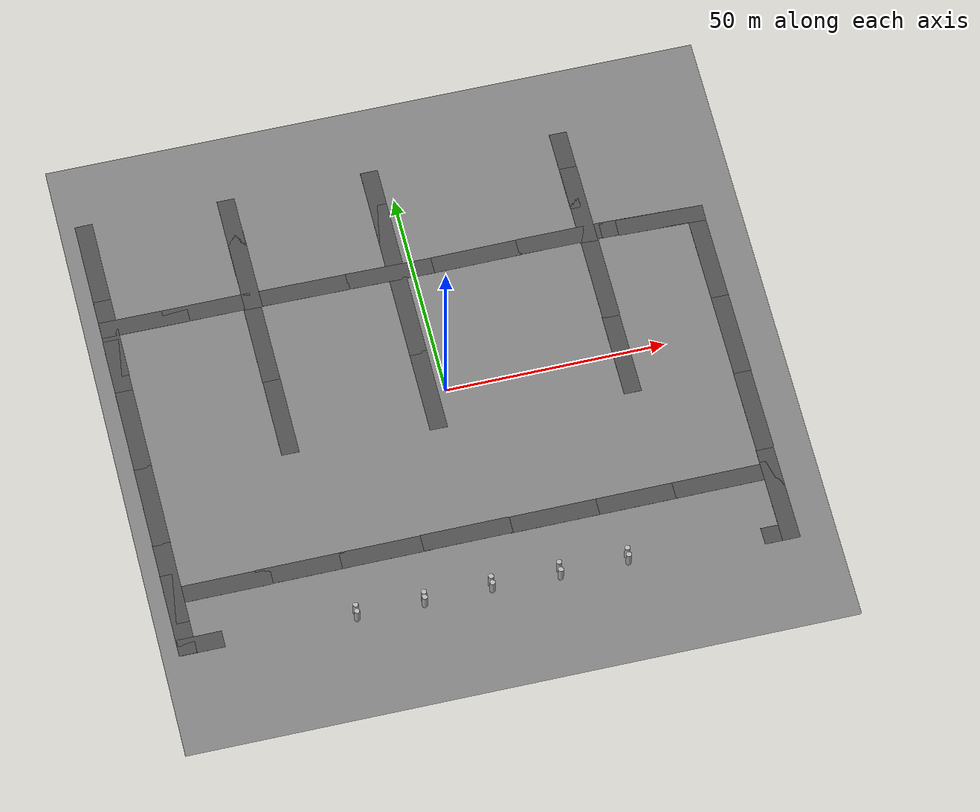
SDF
<sdf version="1.10">
 <world name="default">
  <physics type="ode">
   <max_step_size>0.0040000000000000001</max_step_size>
   <real_time_factor>1</real_time_factor>
   <real_time_update_rate>250</real_time_update_rate>
  </physics>
  <plugin name="gz::sim::systems::Physics" filename="gz-sim-physics-system"/>
  <plugin name="gz::sim::systems::SceneBroadcaster" filename="gz-sim-scene-broadcaster-system"/>
  <plugin name="gz::sim::systems::UserCommands" filename="gz-sim-user-commands-system"/>
  <plugin name="gz::sim::systems::Contact" filename="gz-sim-contact-system"/>
  <plugin name="gz::sim::systems::Imu" filename="gz-sim-imu-system"/>
  <plugin name="gz::sim::systems::AirPressure" filename="gz-sim-air-pressure-system"/>
  <plugin name="gz::sim::systems::ApplyLinkWrench" filename="gz-sim-apply-link-wrench-system"/>
  <plugin name="gz::sim::systems::NavSat" filename="gz-sim-navsat-system"/>
  <plugin name="gz::sim::systems::Sensors" filename="gz-sim-sensors-system">
   <render_engine>ogre2</render_engine>
  </plugin>
  <gravity>0 0 -9.8065999999999995</gravity>
  <magnetic_field>6.0000000000000002e-06 2.3e-05 -4.1999999999999998e-05</magnetic_field>
  <atmosphere type="adiabatic"/>
  <scene>
   <grid>false</grid>
   <ambient>0.400000006 0.400000006 0.400000006 1</ambient>
   <background>0.699999988 0.699999988 0.699999988 1</background>
   <shadows>true</shadows>
  </scene>
  <spherical_coordinates>
   <surface_model>EARTH_WGS84</surface_model>
   <world_frame_orientation>ENU</world_frame_orientation>
   <latitude_deg>50.293615072404997</latitude_deg>
   <longitude_deg>18.674141300161885</longitude_deg>
   <elevation>0</elevation>
   <heading_deg>0</heading_deg>
   <elevation>0</elevation>
  </spherical_coordinates>
  <model name="mine">
   <pose>0 0 0.12295199930667877 0 0 -0.0028702376941504839</pose>
   <static>true</static>
   <link name="link">
    <collision name="collision">
     <geometry>
      <mesh>
       <uri>file:///home/karol/ws/src/dron_sim/sim_bringup/models/mine/model://mine/meshes/mine.dae</uri>
      </mesh>
     </geometry>
    </collision>
    <visual name="visual">
     <geometry>
      <mesh>
       <uri>file:///home/karol/ws/src/dron_sim/sim_bringup/models/mine/model://mine/meshes/mine.dae</uri>
      </mesh>
     </geometry>
    </visual>
    <inertial>
     <mass>1</mass>
     <inertia><ixx>1</ixx><ixy>0</ixy><ixz>0</ixz><iyy>1</iyy><iyz>0</iyz><izz>1</izz></inertia>
    </inertial>
   </link>
  </model>
  <model name="asphalt_plane_0">
   <static>true</static>
   <link name="link">
    <collision name="collision"><geometry><box><size>20 4 0.10000000000000001</size></box></geometry></collision>
    <visual name="visual">
     <cast_shadows>false</cast_shadows>
     <geometry><box><size>20 4 0.10000000000000001</size></box></geometry>
     <material>
      <script>
       <uri>https://fuel.gazebosim.org/1.0/openrobotics/models/asphalt plane/3/files/materials/scripts</uri>
       <uri>https://fuel.gazebosim.org/1.0/openrobotics/models/asphalt plane/3/files/materials/textures</uri>
       <name>vrc/asphalt</name>
      </script>
     </material>
    </visual>
    <inertial>
     <mass>1</mass>
     <inertia><ixx>1</ixx><ixy>0</ixy><ixz>0</ixz><iyy>1</iyy><iyz>0</iyz><izz>1</izz></inertia>
    </inertial>
   </link>
   <pose>-61.217483520507812 32.286003112792969 0.10000000000000001 0 0 -0.0062067301766573144</pose>
  </model>
  <model name="asphalt_plane_1">
   <static>true</static>
   <link name="link">
    <collision name="collision"><geometry><box><size>20 4 0.10000000000000001</size></box></geometry></collision>
    <visual name="visual">
     <cast_shadows>false</cast_shadows>
     <geometry><box><size>20 4 0.10000000000000001</size></box></geometry>
     <material>
      <script>
       <uri>https://fuel.gazebosim.org/1.0/openrobotics/models/asphalt plane/3/files/materials/scripts</uri>
       <uri>https://fuel.gazebosim.org/1.0/openrobotics/models/asphalt plane/3/files/materials/textures</uri>
       <name>vrc/asphalt</name>
      </script>
     </material>
    </visual>
    <inertial>
     <mass>1</mass>
     <inertia><ixx>1</ixx><ixy>0</ixy><ixz>0</ixz><iyy>1</iyy><iyz>0</iyz><izz>1</izz></inertia>
    </inertial>
   </link>
   <pose>-24.775899887084961 32.055500030517578 0.10000000000000001 0 0 -0.01061559961811568</pose>
  </model>
  <model name="asphalt_plane_2">
   <static>true</static>
   <link name="link">
    <collision name="collision"><geometry><box><size>20 4 0.10000000000000001</size></box></geometry></collision>
    <visual name="visual">
     <cast_shadows>false</cast_shadows>
     <geometry><box><size>20 4 0.10000000000000001</size></box></geometry>
     <material>
      <script>
       <uri>https://fuel.gazebosim.org/1.0/openrobotics/models/asphalt plane/3/files/materials/scripts</uri>
       <uri>https://fuel.gazebosim.org/1.0/openrobotics/models/asphalt plane/3/files/materials/textures</uri>
       <name>vrc/asphalt</name>
      </script>
     </material>
    </visual>
    <inertial>
     <mass>1</mass>
     <inertia><ixx>1</ixx><ixy>0</ixy><ixz>0</ixz><iyy>1</iyy><iyz>0</iyz><izz>1</izz></inertia>
    </inertial>
   </link>
   <pose>-5.0120377540588379 31.818853378295898 0.10000000000000001 0 0 -0.015387500146380972</pose>
  </model>
  <model name="asphalt_plane_3">
   <static>true</static>
   <link name="link">
    <collision name="collision"><geometry><box><size>20 4 0.10000000000000001</size></box></geometry></collision>
    <visual name="visual">
     <cast_shadows>false</cast_shadows>
     <geometry><box><size>20 4 0.10000000000000001</size></box></geometry>
     <material>
      <script>
       <uri>https://fuel.gazebosim.org/1.0/openrobotics/models/asphalt plane/3/files/materials/scripts</uri>
       <uri>https://fuel.gazebosim.org/1.0/openrobotics/models/asphalt plane/3/files/materials/textures</uri>
       <name>vrc/asphalt</name>
      </script>
     </material>
    </visual>
    <inertial>
     <mass>1</mass>
     <inertia><ixx>1</ixx><ixy>0</ixy><ixz>0</ixz><iyy>1</iyy><iyz>0</iyz><izz>1</izz></inertia>
    </inertial>
   </link>
   <pose>14.530110359191895 31.741804122924805 0.10000000000000001 0 0 0.0044157601731133434</pose>
  </model>
  <model name="asphalt_plane_4">
   <static>true</static>
   <link name="link">
    <collision name="collision"><geometry><box><size>20 4 0.10000000000000001</size></box></geometry></collision>
    <visual name="visual">
     <cast_shadows>false</cast_shadows>
     <geometry><box><size>20 4 0.10000000000000001</size></box></geometry>
     <material>
      <script>
       <uri>https://fuel.gazebosim.org/1.0/openrobotics/models/asphalt plane/3/files/materials/scripts</uri>
       <uri>https://fuel.gazebosim.org/1.0/openrobotics/models/asphalt plane/3/files/materials/textures</uri>
       <name>vrc/asphalt</name>
      </script>
     </material>
    </visual>
    <inertial>
     <mass>1</mass>
     <inertia><ixx>1</ixx><ixy>0</ixy><ixz>0</ixz><iyy>1</iyy><iyz>0</iyz><izz>1</izz></inertia>
    </inertial>
   </link>
   <pose>34.047901153564453 31.812299728393555 0.10000000000000001 0 0 -0.0038311104937279248</pose>
  </model>
  <model name="asphalt_plane_5">
   <static>true</static>
   <link name="link">
    <collision name="collision"><geometry><box><size>20 4 0.10000000000000001</size></box></geometry></collision>
    <visual name="visual">
     <cast_shadows>false</cast_shadows>
     <geometry><box><size>20 4 0.10000000000000001</size></box></geometry>
     <material>
      <script>
       <uri>https://fuel.gazebosim.org/1.0/openrobotics/models/asphalt plane/3/files/materials/scripts</uri>
       <uri>https://fuel.gazebosim.org/1.0/openrobotics/models/asphalt plane/3/files/materials/textures</uri>
       <name>vrc/asphalt</name>
      </script>
     </material>
    </visual>
    <inertial>
     <mass>1</mass>
     <inertia><ixx>1</ixx><ixy>0</ixy><ixz>0</ixz><iyy>1</iyy><iyz>0</iyz><izz>1</izz></inertia>
    </inertial>
   </link>
   <pose>53.204425811767578 31.432657241821289 0.10000000000000001 0 0 -0.035102299478958564</pose>
  </model>
  <model name="asphalt_plane_6">
   <static>true</static>
   <link name="link">
    <collision name="collision"><geometry><box><size>20 4 0.10000000000000001</size></box></geometry></collision>
    <visual name="visual">
     <cast_shadows>false</cast_shadows>
     <geometry><box><size>20 4 0.10000000000000001</size></box></geometry>
     <material>
      <script>
       <uri>https://fuel.gazebosim.org/1.0/openrobotics/models/asphalt plane/3/files/materials/scripts</uri>
       <uri>https://fuel.gazebosim.org/1.0/openrobotics/models/asphalt plane/3/files/materials/textures</uri>
       <name>vrc/asphalt</name>
      </script>
     </material>
    </visual>
    <inertial>
     <mass>1</mass>
     <inertia><ixx>1</ixx><ixy>0</ixy><ixz>0</ixz><iyy>1</iyy><iyz>0</iyz><izz>1</izz></inertia>
    </inertial>
   </link>
   <pose>56.973941802978516 31.258821487426758 0.10000000000000001 0 0 -0.030759699327713306</pose>
  </model>
  <model name="asphalt_plane_7">
   <static>true</static>
   <link name="link">
    <collision name="collision"><geometry><box><size>4 20 0.10000000000000001</size></box></geometry></collision>
    <visual name="visual">
     <cast_shadows>false</cast_shadows>
     <geometry><box><size>4 20 0.10000000000000001</size></box></geometry>
     <material>
      <script>
       <uri>https://fuel.gazebosim.org/1.0/openrobotics/models/asphalt plane/3/files/materials/scripts</uri>
       <uri>https://fuel.gazebosim.org/1.0/openrobotics/models/asphalt plane/3/files/materials/textures</uri>
       <name>vrc/asphalt</name>
      </script>
     </material>
    </visual>
    <inertial>
     <mass>1</mass>
     <inertia><ixx>1</ixx><ixy>0</ixy><ixz>0</ixz><iyy>1</iyy><iyz>0</iyz><izz>1</izz></inertia>
    </inertial>
   </link>
   <pose>-36.754901885986328 40.108165740966797 0.10000000000000001 0 0 0</pose>
  </model>
  <model name="asphalt_plane_8">
   <static>true</static>
   <link name="link">
    <collision name="collision"><geometry><box><size>4 20 0.10000000000000001</size></box></geometry></collision>
    <visual name="visual">
     <cast_shadows>false</cast_shadows>
     <geometry><box><size>4 20 0.10000000000000001</size></box></geometry>
     <material>
      <script>
       <uri>https://fuel.gazebosim.org/1.0/openrobotics/models/asphalt plane/3/files/materials/scripts</uri>
       <uri>https://fuel.gazebosim.org/1.0/openrobotics/models/asphalt plane/3/files/materials/textures</uri>
       <name>vrc/asphalt</name>
      </script>
     </material>
    </visual>
    <inertial>
     <mass>1</mass>
     <inertia><ixx>1</ixx><ixy>0</ixy><ixz>0</ixz><iyy>1</iyy><iyz>0</iyz><izz>1</izz></inertia>
    </inertial>
   </link>
   <pose>-36.830970764160156 48.987098693847656 0.10000000000000001 0 0 0</pose>
  </model>
  <model name="asphalt_plane_9">
   <static>true</static>
   <link name="link">
    <collision name="collision"><geometry><box><size>4 20 0.10000000000000001</size></box></geometry></collision>
    <visual name="visual">
     <cast_shadows>false</cast_shadows>
     <geometry><box><size>4 20 0.10000000000000001</size></box></geometry>
     <material>
      <script>
       <uri>https://fuel.gazebosim.org/1.0/openrobotics/models/asphalt plane/3/files/materials/scripts</uri>
       <uri>https://fuel.gazebosim.org/1.0/openrobotics/models/asphalt plane/3/files/materials/textures</uri>
       <name>vrc/asphalt</name>
      </script>
     </material>
    </visual>
    <inertial>
     <mass>1</mass>
     <inertia><ixx>1</ixx><ixy>0</ixy><ixz>0</ixz><iyy>1</iyy><iyz>0</iyz><izz>1</izz></inertia>
    </inertial>
   </link>
   <pose>-69.2471923828125 29.912099838256836 0.10000000000000001 0 0 0</pose>
  </model>
  <model name="asphalt_plane_10">
   <static>true</static>
   <link name="link">
    <collision name="collision"><geometry><box><size>4 20 0.10000000000000001</size></box></geometry></collision>
    <visual name="visual">
     <cast_shadows>false</cast_shadows>
     <geometry><box><size>4 20 0.10000000000000001</size></box></geometry>
     <material>
      <script>
       <uri>https://fuel.gazebosim.org/1.0/openrobotics/models/asphalt plane/3/files/materials/scripts</uri>
       <uri>https://fuel.gazebosim.org/1.0/openrobotics/models/asphalt plane/3/files/materials/textures</uri>
       <name>vrc/asphalt</name>
      </script>
     </material>
    </visual>
    <inertial>
     <mass>1</mass>
     <inertia><ixx>1</ixx><ixy>0</ixy><ixz>0</ixz><iyy>1</iyy><iyz>0</iyz><izz>1</izz></inertia>
    </inertial>
   </link>
   <pose>-69.254173278808594 49.835899353027344 0.10000000000000001 0 0 0</pose>
  </model>
  <model name="asphalt_plane_11">
   <static>true</static>
   <link name="link">
    <collision name="collision"><geometry><box><size>4 20 0.10000000000000001</size></box></geometry></collision>
    <visual name="visual">
     <cast_shadows>false</cast_shadows>
     <geometry><box><size>4 20 0.10000000000000001</size></box></geometry>
     <material>
      <script>
       <uri>https://fuel.gazebosim.org/1.0/openrobotics/models/asphalt plane/3/files/materials/scripts</uri>
       <uri>https://fuel.gazebosim.org/1.0/openrobotics/models/asphalt plane/3/files/materials/textures</uri>
       <name>vrc/asphalt</name>
      </script>
     </material>
    </visual>
    <inertial>
     <mass>1</mass>
     <inertia><ixx>1</ixx><ixy>0</ixy><ixz>0</ixz><iyy>1</iyy><iyz>0</iyz><izz>1</izz></inertia>
    </inertial>
   </link>
   <pose>-3.8194301128387451 39.800098419189453 0.10000000149011612 0 0 0</pose>
  </model>
  <model name="asphalt_plane_12">
   <static>true</static>
   <link name="link">
    <collision name="collision"><geometry><box><size>4 20 0.10000000000000001</size></box></geometry></collision>
    <visual name="visual">
     <cast_shadows>false</cast_shadows>
     <geometry><box><size>4 20 0.10000000000000001</size></box></geometry>
     <material>
      <script>
       <uri>https://fuel.gazebosim.org/1.0/openrobotics/models/asphalt plane/3/files/materials/scripts</uri>
       <uri>https://fuel.gazebosim.org/1.0/openrobotics/models/asphalt plane/3/files/materials/textures</uri>
       <name>vrc/asphalt</name>
      </script>
     </material>
    </visual>
    <inertial>
     <mass>1</mass>
     <inertia><ixx>1</ixx><ixy>0</ixy><ixz>0</ixz><iyy>1</iyy><iyz>0</iyz><izz>1</izz></inertia>
    </inertial>
   </link>
   <pose>-3.8157899379730225 48.787849426269531 0.10000000149011612 0 0 0</pose>
  </model>
  <model name="asphalt_plane_13">
   <static>true</static>
   <link name="link">
    <collision name="collision"><geometry><box><size>4 20 0.10000000000000001</size></box></geometry></collision>
    <visual name="visual">
     <cast_shadows>false</cast_shadows>
     <geometry><box><size>4 20 0.10000000000000001</size></box></geometry>
     <material>
      <script>
       <uri>https://fuel.gazebosim.org/1.0/openrobotics/models/asphalt plane/3/files/materials/scripts</uri>
       <uri>https://fuel.gazebosim.org/1.0/openrobotics/models/asphalt plane/3/files/materials/textures</uri>
       <name>vrc/asphalt</name>
      </script>
     </material>
    </visual>
    <inertial>
     <mass>1</mass>
     <inertia><ixx>1</ixx><ixy>0</ixy><ixz>0</ixz><iyy>1</iyy><iyz>0</iyz><izz>1</izz></inertia>
    </inertial>
   </link>
   <pose>40.065200805664062 39.448524475097656 0.10000000000000001 0 0 0</pose>
  </model>
  <model name="asphalt_plane_14">
   <static>true</static>
   <link name="link">
    <collision name="collision"><geometry><box><size>4 20 0.10000000000000001</size></box></geometry></collision>
    <visual name="visual">
     <cast_shadows>false</cast_shadows>
     <geometry><box><size>4 20 0.10000000000000001</size></box></geometry>
     <material>
      <script>
       <uri>https://fuel.gazebosim.org/1.0/openrobotics/models/asphalt plane/3/files/materials/scripts</uri>
       <uri>https://fuel.gazebosim.org/1.0/openrobotics/models/asphalt plane/3/files/materials/textures</uri>
       <name>vrc/asphalt</name>
      </script>
     </material>
    </visual>
    <inertial>
     <mass>1</mass>
     <inertia><ixx>1</ixx><ixy>0</ixy><ixz>0</ixz><iyy>1</iyy><iyz>0</iyz><izz>1</izz></inertia>
    </inertial>
   </link>
   <pose>40.003288269042969 48.785900115966797 0.10000000000000001 0 0 0</pose>
  </model>
  <model name="asphalt_plane_15">
   <static>true</static>
   <link name="link">
    <collision name="collision"><geometry><box><size>4 20 0.10000000000000001</size></box></geometry></collision>
    <visual name="visual">
     <cast_shadows>false</cast_shadows>
     <geometry><box><size>4 20 0.10000000000000001</size></box></geometry>
     <material>
      <script>
       <uri>https://fuel.gazebosim.org/1.0/openrobotics/models/asphalt plane/3/files/materials/scripts</uri>
       <uri>https://fuel.gazebosim.org/1.0/openrobotics/models/asphalt plane/3/files/materials/textures</uri>
       <name>vrc/asphalt</name>
      </script>
     </material>
    </visual>
    <inertial>
     <mass>1</mass>
     <inertia><ixx>1</ixx><ixy>0</ixy><ixz>0</ixz><iyy>1</iyy><iyz>0</iyz><izz>1</izz></inertia>
    </inertial>
   </link>
   <pose>64.909599304199219 19.035907745361328 0.10000000000000001 0 0 0</pose>
  </model>
  <model name="asphalt_plane_16">
   <static>true</static>
   <link name="link">
    <collision name="collision"><geometry><box><size>4 20 0.10000000000000001</size></box></geometry></collision>
    <visual name="visual">
     <cast_shadows>false</cast_shadows>
     <geometry><box><size>4 20 0.10000000000000001</size></box></geometry>
     <material>
      <script>
       <uri>https://fuel.gazebosim.org/1.0/openrobotics/models/asphalt plane/3/files/materials/scripts</uri>
       <uri>https://fuel.gazebosim.org/1.0/openrobotics/models/asphalt plane/3/files/materials/textures</uri>
       <name>vrc/asphalt</name>
      </script>
     </material>
    </visual>
    <inertial>
     <mass>1</mass>
     <inertia><ixx>1</ixx><ixy>0</ixy><ixz>0</ixz><iyy>1</iyy><iyz>0</iyz><izz>1</izz></inertia>
    </inertial>
   </link>
   <pose>64.915397644042969 -0.956828773021698 0.10000000000000001 0 0 0</pose>
  </model>
  <model name="asphalt_plane_17">
   <static>true</static>
   <link name="link">
    <collision name="collision"><geometry><box><size>4 20 0.10000000000000001</size></box></geometry></collision>
    <visual name="visual">
     <cast_shadows>false</cast_shadows>
     <geometry><box><size>4 20 0.10000000000000001</size></box></geometry>
     <material>
      <script>
       <uri>https://fuel.gazebosim.org/1.0/openrobotics/models/asphalt plane/3/files/materials/scripts</uri>
       <uri>https://fuel.gazebosim.org/1.0/openrobotics/models/asphalt plane/3/files/materials/textures</uri>
       <name>vrc/asphalt</name>
      </script>
     </material>
    </visual>
    <inertial>
     <mass>1</mass>
     <inertia><ixx>1</ixx><ixy>0</ixy><ixz>0</ixz><iyy>1</iyy><iyz>0</iyz><izz>1</izz></inertia>
    </inertial>
   </link>
   <pose>64.841201782226562 -20.834541320800781 0.10000000000000001 0 0 0</pose>
  </model>
  <model name="asphalt_plane_18">
   <static>true</static>
   <link name="link">
    <collision name="collision"><geometry><box><size>4 20 0.10000000000000001</size></box></geometry></collision>
    <visual name="visual">
     <cast_shadows>false</cast_shadows>
     <geometry><box><size>4 20 0.10000000000000001</size></box></geometry>
     <material>
      <script>
       <uri>https://fuel.gazebosim.org/1.0/openrobotics/models/asphalt plane/3/files/materials/scripts</uri>
       <uri>https://fuel.gazebosim.org/1.0/openrobotics/models/asphalt plane/3/files/materials/textures</uri>
       <name>vrc/asphalt</name>
      </script>
     </material>
    </visual>
    <inertial>
     <mass>1</mass>
     <inertia><ixx>1</ixx><ixy>0</ixy><ixz>0</ixz><iyy>1</iyy><iyz>0</iyz><izz>1</izz></inertia>
    </inertial>
   </link>
   <pose>64.738609313964844 -40.751701354980469 0.10000000000000001 0 0 0</pose>
  </model>
  <model name="asphalt_plane_19">
   <static>true</static>
   <link name="link">
    <collision name="collision"><geometry><box><size>4 20 0.10000000000000001</size></box></geometry></collision>
    <visual name="visual">
     <cast_shadows>false</cast_shadows>
     <geometry><box><size>4 20 0.10000000000000001</size></box></geometry>
     <material>
      <script>
       <uri>https://fuel.gazebosim.org/1.0/openrobotics/models/asphalt plane/3/files/materials/scripts</uri>
       <uri>https://fuel.gazebosim.org/1.0/openrobotics/models/asphalt plane/3/files/materials/textures</uri>
       <name>vrc/asphalt</name>
      </script>
     </material>
    </visual>
    <inertial>
     <mass>1</mass>
     <inertia><ixx>1</ixx><ixy>0</ixy><ixz>0</ixz><iyy>1</iyy><iyz>0</iyz><izz>1</izz></inertia>
    </inertial>
   </link>
   <pose>-69.308998107910156 6.0952801704406738 0.10000000000000001 0 0 0</pose>
  </model>
  <model name="asphalt_plane_20">
   <static>true</static>
   <link name="link">
    <collision name="collision"><geometry><box><size>4 20 0.10000000000000001</size></box></geometry></collision>
    <visual name="visual">
     <cast_shadows>false</cast_shadows>
     <geometry><box><size>4 20 0.10000000000000001</size></box></geometry>
     <material>
      <script>
       <uri>https://fuel.gazebosim.org/1.0/openrobotics/models/asphalt plane/3/files/materials/scripts</uri>
       <uri>https://fuel.gazebosim.org/1.0/openrobotics/models/asphalt plane/3/files/materials/textures</uri>
       <name>vrc/asphalt</name>
      </script>
     </material>
    </visual>
    <inertial>
     <mass>1</mass>
     <inertia><ixx>1</ixx><ixy>0</ixy><ixz>0</ixz><iyy>1</iyy><iyz>0</iyz><izz>1</izz></inertia>
    </inertial>
   </link>
   <pose>-69.332267761230469 -13.41919994354248 0.10000000000000001 0 0 0</pose>
  </model>
  <model name="asphalt_plane_21">
   <static>true</static>
   <link name="link">
    <collision name="collision"><geometry><box><size>4 20 0.10000000000000001</size></box></geometry></collision>
    <visual name="visual">
     <cast_shadows>false</cast_shadows>
     <geometry><box><size>4 20 0.10000000000000001</size></box></geometry>
     <material>
      <script>
       <uri>https://fuel.gazebosim.org/1.0/openrobotics/models/asphalt plane/3/files/materials/scripts</uri>
       <uri>https://fuel.gazebosim.org/1.0/openrobotics/models/asphalt plane/3/files/materials/textures</uri>
       <name>vrc/asphalt</name>
      </script>
     </material>
    </visual>
    <inertial>
     <mass>1</mass>
     <inertia><ixx>1</ixx><ixy>0</ixy><ixz>0</ixz><iyy>1</iyy><iyz>0</iyz><izz>1</izz></inertia>
    </inertial>
   </link>
   <pose>-69.383697509765625 -33.147899627685547 0.10000000000000001 0 0 0</pose>
  </model>
  <model name="asphalt_plane_22">
   <static>true</static>
   <link name="link">
    <collision name="collision"><geometry><box><size>4 20 0.10000000000000001</size></box></geometry></collision>
    <visual name="visual">
     <cast_shadows>false</cast_shadows>
     <geometry><box><size>4 20 0.10000000000000001</size></box></geometry>
     <material>
      <script>
       <uri>https://fuel.gazebosim.org/1.0/openrobotics/models/asphalt plane/3/files/materials/scripts</uri>
       <uri>https://fuel.gazebosim.org/1.0/openrobotics/models/asphalt plane/3/files/materials/textures</uri>
       <name>vrc/asphalt</name>
      </script>
     </material>
    </visual>
    <inertial>
     <mass>1</mass>
     <inertia><ixx>1</ixx><ixy>0</ixy><ixz>0</ixz><iyy>1</iyy><iyz>0</iyz><izz>1</izz></inertia>
    </inertial>
   </link>
   <pose>-69.411453247070312 -40.968101501464844 0.10000000000000001 0 0 0</pose>
  </model>
  <model name="asphalt_plane">
   <static>true</static>
   <link name="link">
    <collision name="collision"><geometry><box><size>20 4 0.10000000000000001</size></box></geometry></collision>
    <visual name="visual">
     <cast_shadows>false</cast_shadows>
     <geometry><box><size>20 4 0.10000000000000001</size></box></geometry>
     <material>
      <script>
       <uri>https://fuel.gazebosim.org/1.0/openrobotics/models/asphalt plane/3/files/materials/scripts</uri>
       <uri>https://fuel.gazebosim.org/1.0/openrobotics/models/asphalt plane/3/files/materials/textures</uri>
       <name>vrc/asphalt</name>
      </script>
     </material>
    </visual>
    <inertial>
     <mass>1</mass>
     <inertia><ixx>1</ixx><ixy>0</ixy><ixz>0</ixz><iyy>1</iyy><iyz>0</iyz><izz>1</izz></inertia>
    </inertial>
   </link>
   <pose>-46.877128637557007 32.255424064310205 0.10000000000000001 0 0 0</pose>
  </model>
  <model name="asphalt_plane_23">
   <static>true</static>
   <link name="link">
    <collision name="collision"><geometry><box><size>20 4 0.10000000000000001</size></box></geometry></collision>
    <visual name="visual">
     <cast_shadows>false</cast_shadows>
     <geometry><box><size>20 4 0.10000000000000001</size></box></geometry>
     <material>
      <script>
       <uri>https://fuel.gazebosim.org/1.0/openrobotics/models/asphalt plane/3/files/materials/scripts</uri>
       <uri>https://fuel.gazebosim.org/1.0/openrobotics/models/asphalt plane/3/files/materials/textures</uri>
       <name>vrc/asphalt</name>
      </script>
     </material>
    </visual>
    <inertial>
     <mass>1</mass>
     <inertia><ixx>1</ixx><ixy>0</ixy><ixz>0</ixz><iyy>1</iyy><iyz>0</iyz><izz>1</izz></inertia>
    </inertial>
   </link>
   <pose>-57.700267179701569 -36.420220784361767 0.10000000000000001 0 0 0</pose>
  </model>
  <model name="asphalt_plane_24">
   <static>true</static>
   <link name="link">
    <collision name="collision"><geometry><box><size>20 4 0.10000000000000001</size></box></geometry></collision>
    <visual name="visual">
     <cast_shadows>false</cast_shadows>
     <geometry><box><size>20 4 0.10000000000000001</size></box></geometry>
     <material>
      <script>
       <uri>https://fuel.gazebosim.org/1.0/openrobotics/models/asphalt plane/3/files/materials/scripts</uri>
       <uri>https://fuel.gazebosim.org/1.0/openrobotics/models/asphalt plane/3/files/materials/textures</uri>
       <name>vrc/asphalt</name>
      </script>
     </material>
    </visual>
    <inertial>
     <mass>1</mass>
     <inertia><ixx>1</ixx><ixy>0</ixy><ixz>0</ixz><iyy>1</iyy><iyz>0</iyz><izz>1</izz></inertia>
    </inertial>
   </link>
   <pose>-40.948898315429688 -36.324001312255859 0.10000000000000001 0 0 0</pose>
  </model>
  <model name="asphalt_plane_25">
   <static>true</static>
   <link name="link">
    <collision name="collision"><geometry><box><size>20 4 0.10000000000000001</size></box></geometry></collision>
    <visual name="visual">
     <cast_shadows>false</cast_shadows>
     <geometry><box><size>20 4 0.10000000000000001</size></box></geometry>
     <material>
      <script>
       <uri>https://fuel.gazebosim.org/1.0/openrobotics/models/asphalt plane/3/files/materials/scripts</uri>
       <uri>https://fuel.gazebosim.org/1.0/openrobotics/models/asphalt plane/3/files/materials/textures</uri>
       <name>vrc/asphalt</name>
      </script>
     </material>
    </visual>
    <inertial>
     <mass>1</mass>
     <inertia><ixx>1</ixx><ixy>0</ixy><ixz>0</ixz><iyy>1</iyy><iyz>0</iyz><izz>1</izz></inertia>
    </inertial>
   </link>
   <pose>-22.23546337860471 -36.288053687977403 0.10000000000000001 0 0 0</pose>
  </model>
  <model name="asphalt_plane_26">
   <static>true</static>
   <link name="link">
    <collision name="collision"><geometry><box><size>20 4 0.10000000000000001</size></box></geometry></collision>
    <visual name="visual">
     <cast_shadows>false</cast_shadows>
     <geometry><box><size>20 4 0.10000000000000001</size></box></geometry>
     <material>
      <script>
       <uri>https://fuel.gazebosim.org/1.0/openrobotics/models/asphalt plane/3/files/materials/scripts</uri>
       <uri>https://fuel.gazebosim.org/1.0/openrobotics/models/asphalt plane/3/files/materials/textures</uri>
       <name>vrc/asphalt</name>
      </script>
     </material>
    </visual>
    <inertial>
     <mass>1</mass>
     <inertia><ixx>1</ixx><ixy>0</ixy><ixz>0</ixz><iyy>1</iyy><iyz>0</iyz><izz>1</izz></inertia>
    </inertial>
   </link>
   <pose>-3.9713770335818666 -36.210481947376941 0.10000000000000001 0 0 0</pose>
  </model>
  <model name="asphalt_plane_28">
   <static>true</static>
   <link name="link">
    <collision name="collision"><geometry><box><size>20 4 0.10000000000000001</size></box></geometry></collision>
    <visual name="visual">
     <cast_shadows>false</cast_shadows>
     <geometry><box><size>20 4 0.10000000000000001</size></box></geometry>
     <material>
      <script>
       <uri>https://fuel.gazebosim.org/1.0/openrobotics/models/asphalt plane/3/files/materials/scripts</uri>
       <uri>https://fuel.gazebosim.org/1.0/openrobotics/models/asphalt plane/3/files/materials/textures</uri>
       <name>vrc/asphalt</name>
      </script>
     </material>
    </visual>
    <inertial>
     <mass>1</mass>
     <inertia><ixx>1</ixx><ixy>0</ixy><ixz>0</ixz><iyy>1</iyy><iyz>0</iyz><izz>1</izz></inertia>
    </inertial>
   </link>
   <pose>32.744171086946977 -36.31760450865837 0.10000000000000001 0 0 0</pose>
  </model>
  <model name="asphalt_plane_29">
   <static>true</static>
   <link name="link">
    <collision name="collision"><geometry><box><size>20 4 0.10000000000000001</size></box></geometry></collision>
    <visual name="visual">
     <cast_shadows>false</cast_shadows>
     <geometry><box><size>20 4 0.10000000000000001</size></box></geometry>
     <material>
      <script>
       <uri>https://fuel.gazebosim.org/1.0/openrobotics/models/asphalt plane/3/files/materials/scripts</uri>
       <uri>https://fuel.gazebosim.org/1.0/openrobotics/models/asphalt plane/3/files/materials/textures</uri>
       <name>vrc/asphalt</name>
      </script>
     </material>
    </visual>
    <inertial>
     <mass>1</mass>
     <inertia><ixx>1</ixx><ixy>0</ixy><ixz>0</ixz><iyy>1</iyy><iyz>0</iyz><izz>1</izz></inertia>
    </inertial>
   </link>
   <pose>52.731498718261719 -36.303199768066406 0.10000000000000001 0 0 0.0015346934484965289</pose>
  </model>
  <model name="cylinder">
   <pose>-31.945355764881889 -51.106174275102198 1.6229511881577721 5.3359638962113934e-08 -2.2102288329287507e-08 0.01493644159769133</pose>
   <link name="cylinder_link">
    <inertial>
     <inertia>
      <ixx>0.14580000000000001</ixx>
      <ixy>0</ixy>
      <ixz>0</ixz>
      <iyy>0.14580000000000001</iyy>
      <iyz>0</iyz>
      <izz>0.125</izz>
     </inertia>
     <mass>1</mass>
    </inertial>
    <collision name="cylinder_collision">
     <geometry><cylinder><radius>0.59999999999999998</radius><length>3</length></cylinder></geometry>
    </collision>
    <visual name="cylinder_visual">
     <geometry>
      <cylinder><radius>0.59999999999999998</radius><length>4.7999999999999998</length></cylinder>
     </geometry>
     <material>
      <ambient>0.300000012 0.300000012 0.300000012 1</ambient>
      <diffuse>0.699999988 0.699999988 0.699999988 1</diffuse>
      <specular>1 1 1 1</specular>
     </material>
    </visual>
   </link>
   <static>false</static>
  </model>
  <model name="cylinder_0">
   <pose>-31.894636796608236 -49.521862196188508 1.622951166286384 -2.0261294403959919e-08 -8.4292994939223137e-09 -0.026193496584815148</pose>
   <link name="cylinder_link">
    <inertial>
     <inertia>
      <ixx>0.14580000000000001</ixx>
      <ixy>0</ixy>
      <ixz>0</ixz>
      <iyy>0.14580000000000001</iyy>
      <iyz>0</iyz>
      <izz>0.125</izz>
     </inertia>
     <mass>1</mass>
    </inertial>
    <collision name="cylinder_collision">
     <geometry><cylinder><radius>0.59999999999999998</radius><length>3</length></cylinder></geometry>
    </collision>
    <visual name="cylinder_visual">
     <geometry>
      <cylinder><radius>0.59999999999999998</radius><length>4.7999999999999998</length></cylinder>
     </geometry>
     <material>
      <ambient>0.300000012 0.300000012 0.300000012 1</ambient>
      <diffuse>0.699999988 0.699999988 0.699999988 1</diffuse>
      <specular>1 1 1 1</specular>
     </material>
    </visual>
   </link>
   <static>false</static>
  </model>
  <model name="cylinder_1">
   <pose>-16.873616074582234 -51.171013976806968 1.6229511542479975 3.9936610906107616e-08 -8.6721580272902566e-08 0.0063640389164049084</pose>
   <link name="cylinder_link">
    <inertial>
     <inertia>
      <ixx>0.14580000000000001</ixx>
      <ixy>0</ixy>
      <ixz>0</ixz>
      <iyy>0.14580000000000001</iyy>
      <iyz>0</iyz>
      <izz>0.125</izz>
     </inertia>
     <mass>1</mass>
    </inertial>
    <collision name="cylinder_collision">
     <geometry><cylinder><radius>0.59999999999999998</radius><length>3</length></cylinder></geometry>
    </collision>
    <visual name="cylinder_visual">
     <geometry>
      <cylinder><radius>0.59999999999999998</radius><length>4.7999999999999998</length></cylinder>
     </geometry>
     <material>
      <ambient>0.300000012 0.300000012 0.300000012 1</ambient>
      <diffuse>0.699999988 0.699999988 0.699999988 1</diffuse>
      <specular>1 1 1 1</specular>
     </material>
    </visual>
   </link>
   <static>false</static>
  </model>
  <model name="cylinder_2">
   <pose>-16.785625991105992 -49.88261262129312 1.6229511443606641 7.3475981294437652e-08 3.044074514534766e-08 -0.010411271970932978</pose>
   <link name="cylinder_link">
    <inertial>
     <inertia>
      <ixx>0.14580000000000001</ixx>
      <ixy>0</ixy>
      <ixz>0</ixz>
      <iyy>0.14580000000000001</iyy>
      <iyz>0</iyz>
      <izz>0.125</izz>
     </inertia>
     <mass>1</mass>
    </inertial>
    <collision name="cylinder_collision">
     <geometry><cylinder><radius>0.59999999999999998</radius><length>3</length></cylinder></geometry>
    </collision>
    <visual name="cylinder_visual">
     <geometry>
      <cylinder><radius>0.59999999999999998</radius><length>4.7999999999999998</length></cylinder>
     </geometry>
     <material>
      <ambient>0.300000012 0.300000012 0.300000012 1</ambient>
      <diffuse>0.699999988 0.699999988 0.699999988 1</diffuse>
      <specular>1 1 1 1</specular>
     </material>
    </visual>
   </link>
   <static>false</static>
  </model>
  <model name="cylinder_3">
   <pose>-1.7771536506278733 -51.071195532467783 1.6228393364744684 -9.0644935190132484e-08 -3.7545852622917469e-08 0.014815477646978121</pose>
   <link name="cylinder_link">
    <inertial>
     <inertia>
      <ixx>0.14580000000000001</ixx>
      <ixy>0</ixy>
      <ixz>0</ixz>
      <iyy>0.14580000000000001</iyy>
      <iyz>0</iyz>
      <izz>0.125</izz>
     </inertia>
     <mass>1</mass>
    </inertial>
    <collision name="cylinder_collision">
     <geometry><cylinder><radius>0.59999999999999998</radius><length>3</length></cylinder></geometry>
    </collision>
    <visual name="cylinder_visual">
     <geometry>
      <cylinder><radius>0.59999999999999998</radius><length>4.7999999999999998</length></cylinder>
     </geometry>
     <material>
      <ambient>0.300000012 0.300000012 0.300000012 1</ambient>
      <diffuse>0.699999988 0.699999988 0.699999988 1</diffuse>
      <specular>1 1 1 1</specular>
     </material>
    </visual>
   </link>
   <static>false</static>
  </model>
  <model name="cylinder_4">
   <pose>-1.7489922461739924 -49.555374079737199 1.6229107424014513 7.2864100027823631e-08 -3.1518761731173371e-08 -0.018471758809432724</pose>
   <link name="cylinder_link">
    <inertial>
     <inertia>
      <ixx>0.14580000000000001</ixx>
      <ixy>0</ixy>
      <ixz>0</ixz>
      <iyy>0.14580000000000001</iyy>
      <iyz>0</iyz>
      <izz>0.125</izz>
     </inertia>
     <mass>1</mass>
    </inertial>
    <collision name="cylinder_collision">
     <geometry><cylinder><radius>0.59999999999999998</radius><length>3</length></cylinder></geometry>
    </collision>
    <visual name="cylinder_visual">
     <geometry>
      <cylinder><radius>0.59999999999999998</radius><length>4.7999999999999998</length></cylinder>
     </geometry>
     <material>
      <ambient>0.300000012 0.300000012 0.300000012 1</ambient>
      <diffuse>0.699999988 0.699999988 0.699999988 1</diffuse>
      <specular>1 1 1 1</specular>
     </material>
    </visual>
   </link>
   <static>false</static>
  </model>
  <model name="cylinder_5">
   <pose>13.412348311698866 -51.447649751495028 1.6229511549376929 3.7253862009830115e-08 8.97346480466551e-08 6.5463508337902811e-05</pose>
   <link name="cylinder_link">
    <inertial>
     <inertia>
      <ixx>0.14580000000000001</ixx>
      <ixy>0</ixy>
      <ixz>0</ixz>
      <iyy>0.14580000000000001</iyy>
      <iyz>0</iyz>
      <izz>0.125</izz>
     </inertia>
     <mass>1</mass>
    </inertial>
    <collision name="cylinder_collision">
     <geometry><cylinder><radius>0.59999999999999998</radius><length>3</length></cylinder></geometry>
    </collision>
    <visual name="cylinder_visual">
     <geometry>
      <cylinder><radius>0.59999999999999998</radius><length>4.7999999999999998</length></cylinder>
     </geometry>
     <material>
      <ambient>0.300000012 0.300000012 0.300000012 1</ambient>
      <diffuse>0.699999988 0.699999988 0.699999988 1</diffuse>
      <specular>1 1 1 1</specular>
     </material>
    </visual>
   </link>
   <static>false</static>
  </model>
  <model name="cylinder_6">
   <pose>13.454820783813428 -49.583106147739095 1.6229511391869387 -6.5563768222032346e-08 -2.7157404124546711e-08 -0.007996962963949486</pose>
   <link name="cylinder_link">
    <inertial>
     <inertia>
      <ixx>0.14580000000000001</ixx>
      <ixy>0</ixy>
      <ixz>0</ixz>
      <iyy>0.14580000000000001</iyy>
      <iyz>0</iyz>
      <izz>0.125</izz>
     </inertia>
     <mass>1</mass>
    </inertial>
    <collision name="cylinder_collision">
     <geometry><cylinder><radius>0.59999999999999998</radius><length>3</length></cylinder></geometry>
    </collision>
    <visual name="cylinder_visual">
     <geometry>
      <cylinder><radius>0.59999999999999998</radius><length>4.7999999999999998</length></cylinder>
     </geometry>
     <material>
      <ambient>0.300000012 0.300000012 0.300000012 1</ambient>
      <diffuse>0.699999988 0.699999988 0.699999988 1</diffuse>
      <specular>1 1 1 1</specular>
     </material>
    </visual>
   </link>
   <static>false</static>
  </model>
  <model name="cylinder_7">
   <pose>28.670038613947117 -51.307185697460326 1.6229511380549617 6.8676812870199689e-08 1.8321280481656755e-10 -0.001768367282604201</pose>
   <link name="cylinder_link">
    <inertial>
     <inertia>
      <ixx>0.14580000000000001</ixx>
      <ixy>0</ixy>
      <ixz>0</ixz>
      <iyy>0.14580000000000001</iyy>
      <iyz>0</iyz>
      <izz>0.125</izz>
     </inertia>
     <mass>1</mass>
    </inertial>
    <collision name="cylinder_collision">
     <geometry><cylinder><radius>0.59999999999999998</radius><length>3</length></cylinder></geometry>
    </collision>
    <visual name="cylinder_visual">
     <geometry>
      <cylinder><radius>0.59999999999999998</radius><length>4.7999999999999998</length></cylinder>
     </geometry>
     <material>
      <ambient>0.300000012 0.300000012 0.300000012 1</ambient>
      <diffuse>0.699999988 0.699999988 0.699999988 1</diffuse>
      <specular>1 1 1 1</specular>
     </material>
    </visual>
   </link>
   <static>false</static>
  </model>
  <model name="cylinder_8">
   <pose>28.747786783944797 -49.621735090254504 1.6229501370635415 7.0591088482205813e-08 2.9928470720588637e-10 0.0058203547320337034</pose>
   <link name="cylinder_link">
    <inertial>
     <inertia>
      <ixx>0.14580000000000001</ixx>
      <ixy>0</ixy>
      <ixz>0</ixz>
      <iyy>0.14580000000000001</iyy>
      <iyz>0</iyz>
      <izz>0.125</izz>
     </inertia>
     <mass>1</mass>
    </inertial>
    <collision name="cylinder_collision">
     <geometry><cylinder><radius>0.59999999999999998</radius><length>3</length></cylinder></geometry>
    </collision>
    <visual name="cylinder_visual">
     <geometry>
      <cylinder><radius>0.59999999999999998</radius><length>4.7999999999999998</length></cylinder>
     </geometry>
     <material>
      <ambient>0.300000012 0.300000012 0.300000012 1</ambient>
      <diffuse>0.699999988 0.699999988 0.699999988 1</diffuse>
      <specular>1 1 1 1</specular>
     </material>
    </visual>
   </link>
   <static>false</static>
  </model>
  <model name="asphalt_plane_30">
   <static>true</static>
   <link name="link">
    <collision name="collision"><geometry><box><size>20 20 0.10000000000000001</size></box></geometry></collision>
    <visual name="visual">
     <cast_shadows>false</cast_shadows>
     <geometry><box><size>4 20 0.10000000000000001</size></box></geometry>
     <material>
      <script>
       <uri>https://fuel.gazebosim.org/1.0/openrobotics/models/asphalt plane/3/files/materials/scripts</uri>
       <uri>https://fuel.gazebosim.org/1.0/openrobotics/models/asphalt plane/3/files/materials/textures</uri>
       <name>vrc/asphalt</name>
      </script>
     </material>
    </visual>
    <inertial>
     <mass>1</mass>
     <inertia><ixx>1</ixx><ixy>0</ixy><ixz>0</ixz><iyy>1</iyy><iyz>0</iyz><izz>1</izz></inertia>
    </inertial>
   </link>
   <pose>-37.022344134098667 21.171242143334805 0.10000000000000001 0 0 0</pose>
  </model>
  <model name="asphalt_plane_31">
   <static>true</static>
   <link name="link">
    <collision name="collision"><geometry><box><size>4 20 0.10000000000000001</size></box></geometry></collision>
    <visual name="visual">
     <cast_shadows>false</cast_shadows>
     <geometry><box><size>4 20 0.10000000000000001</size></box></geometry>
     <material>
      <script>
       <uri>https://fuel.gazebosim.org/1.0/openrobotics/models/asphalt plane/3/files/materials/scripts</uri>
       <uri>https://fuel.gazebosim.org/1.0/openrobotics/models/asphalt plane/3/files/materials/textures</uri>
       <name>vrc/asphalt</name>
      </script>
     </material>
    </visual>
    <inertial>
     <mass>1</mass>
     <inertia><ixx>1</ixx><ixy>0</ixy><ixz>0</ixz><iyy>1</iyy><iyz>0</iyz><izz>1</izz></inertia>
    </inertial>
   </link>
   <pose>-36.973930358886719 2.2217600345611572 0.10000000000000001 0 0 0</pose>
  </model>
  <model name="asphalt_plane_32">
   <static>true</static>
   <link name="link">
    <collision name="collision"><geometry><box><size>4 20 0.10000000000000001</size></box></geometry></collision>
    <visual name="visual">
     <cast_shadows>false</cast_shadows>
     <geometry><box><size>4 20 0.10000000000000001</size></box></geometry>
     <material>
      <script>
       <uri>https://fuel.gazebosim.org/1.0/openrobotics/models/asphalt plane/3/files/materials/scripts</uri>
       <uri>https://fuel.gazebosim.org/1.0/openrobotics/models/asphalt plane/3/files/materials/textures</uri>
       <name>vrc/asphalt</name>
      </script>
     </material>
    </visual>
    <inertial>
     <mass>1</mass>
     <inertia><ixx>1</ixx><ixy>0</ixy><ixz>0</ixz><iyy>1</iyy><iyz>0</iyz><izz>1</izz></inertia>
    </inertial>
   </link>
   <pose>-3.7929732799530029 20.22599983215332 0.10000000000000001 0 0 0</pose>
  </model>
  <model name="asphalt_plane_33">
   <static>true</static>
   <link name="link">
    <collision name="collision"><geometry><box><size>4 20 0.10000000000000001</size></box></geometry></collision>
    <visual name="visual">
     <cast_shadows>false</cast_shadows>
     <geometry><box><size>4 20 0.10000000000000001</size></box></geometry>
     <material>
      <script>
       <uri>https://fuel.gazebosim.org/1.0/openrobotics/models/asphalt plane/3/files/materials/scripts</uri>
       <uri>https://fuel.gazebosim.org/1.0/openrobotics/models/asphalt plane/3/files/materials/textures</uri>
       <name>vrc/asphalt</name>
      </script>
     </material>
    </visual>
    <inertial>
     <mass>1</mass>
     <inertia><ixx>1</ixx><ixy>0</ixy><ixz>0</ixz><iyy>1</iyy><iyz>0</iyz><izz>1</izz></inertia>
    </inertial>
   </link>
   <pose>-3.7779326438903809 0.81530600786209106 0.10000000000000001 0 0 0</pose>
  </model>
  <model name="asphalt_plane_34">
   <static>true</static>
   <link name="link">
    <collision name="collision"><geometry><box><size>4 20 0.10000000000000001</size></box></geometry></collision>
    <visual name="visual">
     <cast_shadows>false</cast_shadows>
     <geometry><box><size>4 20 0.10000000000000001</size></box></geometry>
     <material>
      <script>
       <uri>https://fuel.gazebosim.org/1.0/openrobotics/models/asphalt plane/3/files/materials/scripts</uri>
       <uri>https://fuel.gazebosim.org/1.0/openrobotics/models/asphalt plane/3/files/materials/textures</uri>
       <name>vrc/asphalt</name>
      </script>
     </material>
    </visual>
    <inertial>
     <mass>1</mass>
     <inertia><ixx>1</ixx><ixy>0</ixy><ixz>0</ixz><iyy>1</iyy><iyz>0</iyz><izz>1</izz></inertia>
    </inertial>
   </link>
   <pose>40.150882720947266 19.589000701904297 0.10000000000000001 0 0 0</pose>
  </model>
  <model name="asphalt_plane_35">
   <static>true</static>
   <link name="link">
    <collision name="collision"><geometry><box><size>4 20 0.10000000000000001</size></box></geometry></collision>
    <visual name="visual">
     <cast_shadows>false</cast_shadows>
     <geometry><box><size>4 20 0.10000000000000001</size></box></geometry>
     <material>
      <script>
       <uri>https://fuel.gazebosim.org/1.0/openrobotics/models/asphalt plane/3/files/materials/scripts</uri>
       <uri>https://fuel.gazebosim.org/1.0/openrobotics/models/asphalt plane/3/files/materials/textures</uri>
       <name>vrc/asphalt</name>
      </script>
     </material>
    </visual>
    <inertial>
     <mass>1</mass>
     <inertia><ixx>1</ixx><ixy>0</ixy><ixz>0</ixz><iyy>1</iyy><iyz>0</iyz><izz>1</izz></inertia>
    </inertial>
   </link>
   <pose>40.05316162109375 -0.25200200080871582 0.10000000000000001 0 0 0</pose>
  </model>
  <model name="asphalt_plane_36">
   <static>true</static>
   <link name="link">
    <collision name="collision"><geometry><box><size>4 20 0.10000000000000001</size></box></geometry></collision>
    <visual name="visual">
     <cast_shadows>false</cast_shadows>
     <geometry><box><size>4 20 0.10000000000000001</size></box></geometry>
     <material>
      <script>
       <uri>https://fuel.gazebosim.org/1.0/openrobotics/models/asphalt plane/3/files/materials/scripts</uri>
       <uri>https://fuel.gazebosim.org/1.0/openrobotics/models/asphalt plane/3/files/materials/textures</uri>
       <name>vrc/asphalt</name>
      </script>
     </material>
    </visual>
    <inertial>
     <mass>1</mass>
     <inertia><ixx>1</ixx><ixy>0</ixy><ixz>0</ixz><iyy>1</iyy><iyz>0</iyz><izz>1</izz></inertia>
    </inertial>
   </link>
   <pose>-69.319404602050781 19.384000778198242 0.10000000000000001 0 0 0</pose>
  </model>
  <model name="asphalt_plane_37">
   <static>true</static>
   <link name="link">
    <collision name="collision"><geometry><box><size>4 20 0.10000000000000001</size></box></geometry></collision>
    <visual name="visual">
     <cast_shadows>false</cast_shadows>
     <geometry><box><size>4 20 0.10000000000000001</size></box></geometry>
     <material>
      <script>
       <uri>https://fuel.gazebosim.org/1.0/openrobotics/models/asphalt plane/3/files/materials/scripts</uri>
       <uri>https://fuel.gazebosim.org/1.0/openrobotics/models/asphalt plane/3/files/materials/textures</uri>
       <name>vrc/asphalt</name>
      </script>
     </material>
    </visual>
    <inertial>
     <mass>1</mass>
     <inertia><ixx>1</ixx><ixy>0</ixy><ixz>0</ixz><iyy>1</iyy><iyz>0</iyz><izz>1</izz></inertia>
    </inertial>
   </link>
   <pose>64.730400085449219 -43.835109710693359 0.10000000000000001 0 0 0</pose>
  </model>
  <model name="asphalt_plane_27">
   <static>true</static>
   <link name="link">
    <collision name="collision"><geometry><box><size>20 4 0.10000000000000001</size></box></geometry></collision>
    <visual name="visual">
     <cast_shadows>false</cast_shadows>
     <geometry><box><size>20 4 0.10000000000000001</size></box></geometry>
     <material>
      <script>
       <uri>https://fuel.gazebosim.org/1.0/openrobotics/models/asphalt plane/3/files/materials/scripts</uri>
       <uri>https://fuel.gazebosim.org/1.0/openrobotics/models/asphalt plane/3/files/materials/textures</uri>
       <name>vrc/asphalt</name>
      </script>
     </material>
    </visual>
    <inertial>
     <mass>1</mass>
     <inertia><ixx>1</ixx><ixy>0</ixy><ixz>0</ixz><iyy>1</iyy><iyz>0</iyz><izz>1</izz></inertia>
    </inertial>
   </link>
   <pose>15.489812623602063 -36.309740767331981 0.10000000000000001 0 0 0</pose>
  </model>
  <model name="asphalt_plane_38">
   <static>true</static>
   <link name="link">
    <collision name="collision"><geometry><box><size>10 4 0.10000000000000001</size></box></geometry></collision>
    <visual name="visual">
     <cast_shadows>false</cast_shadows>
     <geometry><box><size>10 4 0.10000000000000001</size></box></geometry>
     <material>
      <script>
       <uri>https://fuel.gazebosim.org/1.0/openrobotics/models/asphalt plane/3/files/materials/scripts</uri>
       <uri>https://fuel.gazebosim.org/1.0/openrobotics/models/asphalt plane/3/files/materials/textures</uri>
       <name>vrc/asphalt</name>
      </script>
     </material>
    </visual>
    <inertial>
     <mass>1</mass>
     <inertia><ixx>1</ixx><ixy>0</ixy><ixz>0</ixz><iyy>1</iyy><iyz>0</iyz><izz>1</izz></inertia>
    </inertial>
   </link>
   <pose>-66.172256469726562 -49.031898498535156 0.10000000000000001 0 0 0</pose>
  </model>
  <model name="asphalt_plane_39">
   <static>true</static>
   <link name="link">
    <collision name="collision"><geometry><box><size>6 4 0.10000000000000001</size></box></geometry></collision>
    <visual name="visual">
     <cast_shadows>false</cast_shadows>
     <geometry><box><size>6 4 0.10000000000000001</size></box></geometry>
     <material>
      <script>
       <uri>https://fuel.gazebosim.org/1.0/openrobotics/models/asphalt plane/3/files/materials/scripts</uri>
       <uri>https://fuel.gazebosim.org/1.0/openrobotics/models/asphalt plane/3/files/materials/textures</uri>
       <name>vrc/asphalt</name>
      </script>
     </material>
    </visual>
    <inertial>
     <mass>1</mass>
     <inertia><ixx>1</ixx><ixy>0</ixy><ixz>0</ixz><iyy>1</iyy><iyz>0</iyz><izz>1</izz></inertia>
    </inertial>
   </link>
   <pose>61.7843017578125 -51.822517395019531 0.10000000000000001 0 0 0</pose>
  </model>
  <light name="sun" type="directional">
   <pose>0 0 20 -1.3 0 0.5</pose>
   <cast_shadows>false</cast_shadows>
   <intensity>2</intensity>
   <direction>0 0 -1</direction>
   <diffuse>0.800000012 0.800000012 0.800000012 1</diffuse>
   <specular>0.00999999978 0.00999999978 0.00999999978 1</specular>
   <attenuation><range>10</range><linear>1</linear><constant>1</constant><quadratic>0</quadratic></attenuation>
   <spot><inner_angle>0</inner_angle><outer_angle>0</outer_angle><falloff>0</falloff></spot>
  </light>
 </world>
</sdf>
